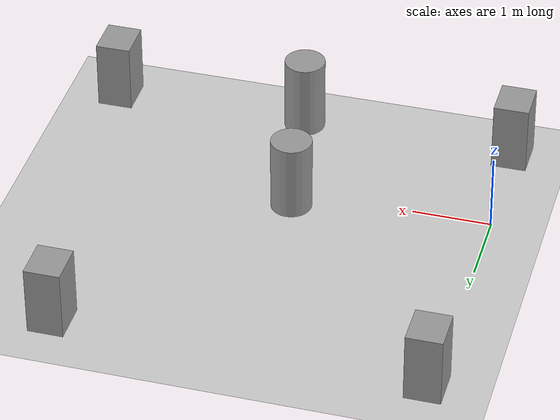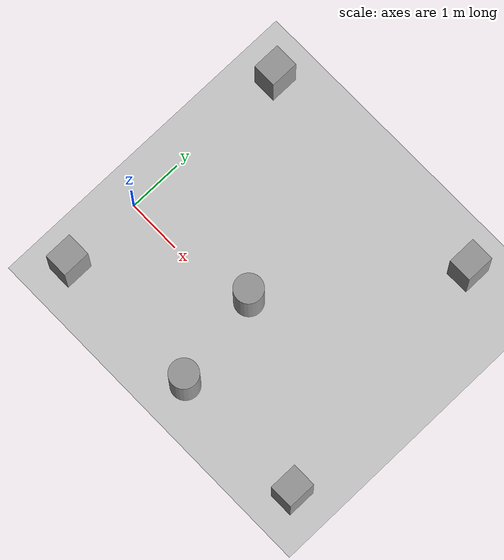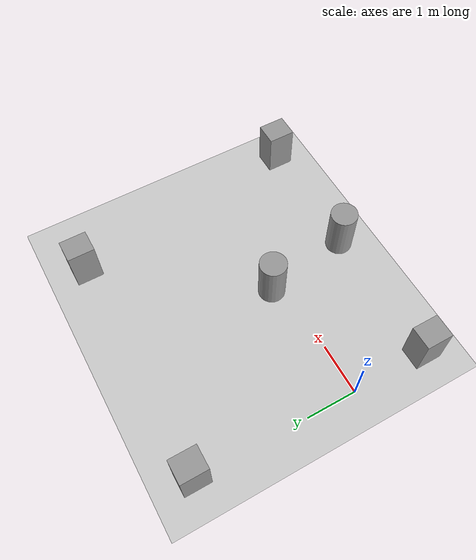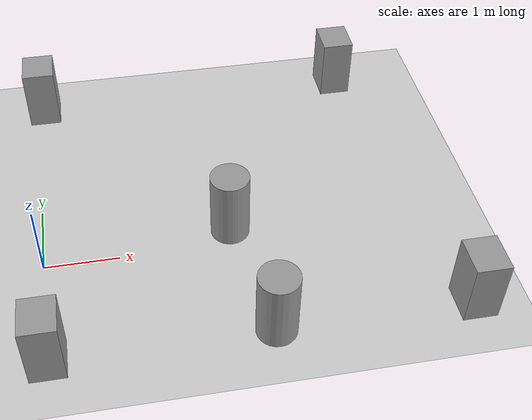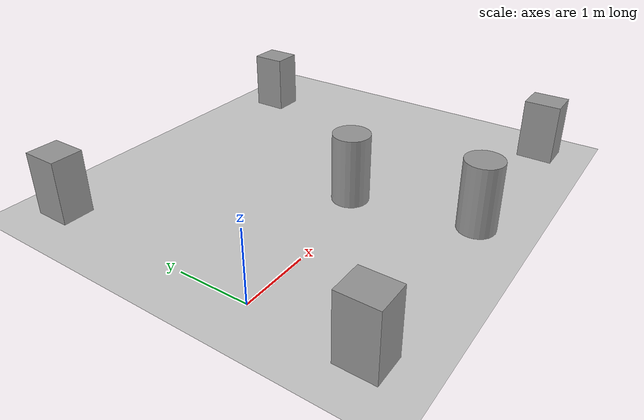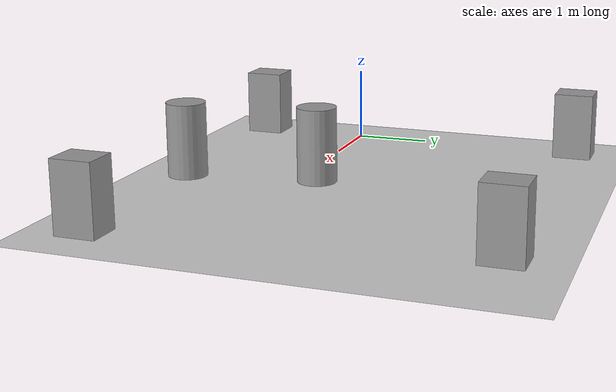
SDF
<sdf version="1.6">
 <world name="default">
  <light name="sun" type="directional">
   <pose>0 0 10 0 -0 0</pose>
   <diffuse>0.8 0.8 0.8 1</diffuse>
   <specular>0.2 0.2 0.2 1</specular>
   <attenuation>
    <range>1000</range>
    <constant>0.9</constant>
    <linear>0.01</linear>
    <quadratic>0.001</quadratic>
   </attenuation>
   <direction>-0.5 0.1 -0.9</direction>
  </light>
  <model name="ground_plane">
   <static>1</static>
   <link name="link">
    <collision name="collision">
     <geometry><plane><normal>0 0 1</normal><size>100 100</size></plane></geometry>
     <surface><friction><ode><mu>100</mu><mu2>50</mu2></ode></friction></surface>
    </collision>
    <visual name="visual">
     <cast_shadows>0</cast_shadows>
     <geometry><plane><normal>0 0 1</normal><size>100 100</size></plane></geometry>
     <material>
      <script><uri>file://media/materials/scripts/gazebo.material</uri><name>Gazebo/Grey</name></script>
     </material>
    </visual>
   </link>
  </model>
  <gravity>0 0 -9.8</gravity>
  <magnetic_field>6e-06 2.3e-05 -4.2e-05</magnetic_field>
  <atmosphere type="adiabatic"/>
  <physics name="default_physics" default="0" type="ode">
   <max_step_size>0.001</max_step_size>
   <real_time_factor>1</real_time_factor>
   <real_time_update_rate>1000</real_time_update_rate>
  </physics>
  <scene><ambient>0.4 0.4 0.4 1</ambient><background>0.7 0.7 0.7 1</background><shadows>1</shadows></scene>
  <spherical_coordinates>
   <surface_model>EARTH_WGS84</surface_model>
   <latitude_deg>0</latitude_deg>
   <longitude_deg>0</longitude_deg>
   <elevation>0</elevation>
   <heading_deg>0</heading_deg>
  </spherical_coordinates>
  <model name="unit_box" type="fixed">
   <pose>0.033764 -1.48835 0.454873 0 -0 0</pose>
   <link name="link">
    <inertial>
     <mass>1000</mass>
     <inertia>
      <ixx>0.166667</ixx>
      <ixy>0</ixy>
      <ixz>0</ixz>
      <iyy>0.166667</iyy>
      <iyz>0</iyz>
      <izz>0.166667</izz>
     </inertia>
    </inertial>
    <collision name="collision">
     <geometry><box><size>0.451569 0.525598 0.909747</size></box></geometry>
    </collision>
    <visual name="visual">
     <geometry><box><size>0.451569 0.525598 0.909747</size></box></geometry>
     <material>
      <script><name>Gazebo/Grey</name><uri>file://media/materials/scripts/gazebo.material</uri></script>
     </material>
    </visual>
   </link>
  </model>
  <model name="unit_box_clone" type="fixed">
   <pose>0.073543 3.22567 0.454874 0 -0 0</pose>
   <link name="link">
    <inertial>
     <mass>1000</mass>
     <inertia>
      <ixx>0.166667</ixx>
      <ixy>0</ixy>
      <ixz>0</ixz>
      <iyy>0.166667</iyy>
      <iyz>0</iyz>
      <izz>0.166667</izz>
     </inertia>
    </inertial>
    <collision name="collision">
     <geometry><box><size>0.451569 0.525599 0.909747</size></box></geometry>
    </collision>
    <visual name="visual">
     <geometry><box><size>0.451569 0.525599 0.909747</size></box></geometry>
     <material>
      <script><name>Gazebo/Grey</name><uri>file://media/materials/scripts/gazebo.material</uri></script>
     </material>
    </visual>
   </link>
  </model>
  <model name="unit_cylinder" type="fixed">
   <pose>2.52437 0.251734 0.5 0 -0 0</pose>
   <link name="link">
    <inertial>
     <mass>1000</mass>
     <inertia><ixx>0.145833</ixx><ixy>0</ixy><ixz>0</ixz><iyy>0.145833</iyy><iyz>0</iyz><izz>0.125</izz></inertia>
    </inertial>
    <collision name="collision">
     <geometry><cylinder><radius>0.263673</radius><length>1</length></cylinder></geometry>
    </collision>
    <visual name="visual">
     <geometry><cylinder><radius>0.263673</radius><length>1</length></cylinder></geometry>
     <material>
      <script><name>Gazebo/Grey</name><uri>file://media/materials/scripts/gazebo.material</uri></script>
     </material>
    </visual>
   </link>
  </model>
  <model name="unit_box_clone_0" type="fixed">
   <pose>5.35252 -1.48835 0.454874 0 -0 0</pose>
   <link name="link">
    <inertial>
     <mass>1000</mass>
     <inertia>
      <ixx>0.166667</ixx>
      <ixy>0</ixy>
      <ixz>0</ixz>
      <iyy>0.166667</iyy>
      <iyz>0</iyz>
      <izz>0.166667</izz>
     </inertia>
    </inertial>
    <collision name="collision">
     <geometry><box><size>0.451569 0.525599 0.909747</size></box></geometry>
    </collision>
    <visual name="visual">
     <geometry><box><size>0.451569 0.525599 0.909747</size></box></geometry>
     <material>
      <script><name>Gazebo/Grey</name><uri>file://media/materials/scripts/gazebo.material</uri></script>
     </material>
    </visual>
   </link>
  </model>
  <model name="unit_box_clone_1" type="fixed">
   <pose>4.69568 3.22567 0.454874 0 -0 0</pose>
   <link name="link">
    <inertial>
     <mass>1000</mass>
     <inertia>
      <ixx>0.166667</ixx>
      <ixy>0</ixy>
      <ixz>0</ixz>
      <iyy>0.166667</iyy>
      <iyz>0</iyz>
      <izz>0.166667</izz>
     </inertia>
    </inertial>
    <collision name="collision">
     <geometry><box><size>0.451569 0.525599 0.909747</size></box></geometry>
    </collision>
    <visual name="visual">
     <geometry><box><size>0.451569 0.525599 0.909747</size></box></geometry>
     <material>
      <script><name>Gazebo/Grey</name><uri>file://media/materials/scripts/gazebo.material</uri></script>
     </material>
    </visual>
   </link>
  </model>
  <model name="unit_cylinder_clone" type="fixed">
   <pose>2.81385 -1.48748 0.5 0 -0 0</pose>
   <link name="link">
    <inertial>
     <mass>1000</mass>
     <inertia><ixx>0.145833</ixx><ixy>0</ixy><ixz>0</ixz><iyy>0.145833</iyy><iyz>0</iyz><izz>0.125</izz></inertia>
    </inertial>
    <collision name="collision">
     <geometry><cylinder><radius>0.263673</radius><length>1</length></cylinder></geometry>
    </collision>
    <visual name="visual">
     <geometry><cylinder><radius>0.263673</radius><length>1</length></cylinder></geometry>
     <material>
      <script><name>Gazebo/Grey</name><uri>file://media/materials/scripts/gazebo.material</uri></script>
     </material>
    </visual>
   </link>
  </model>
 </world>
</sdf>
